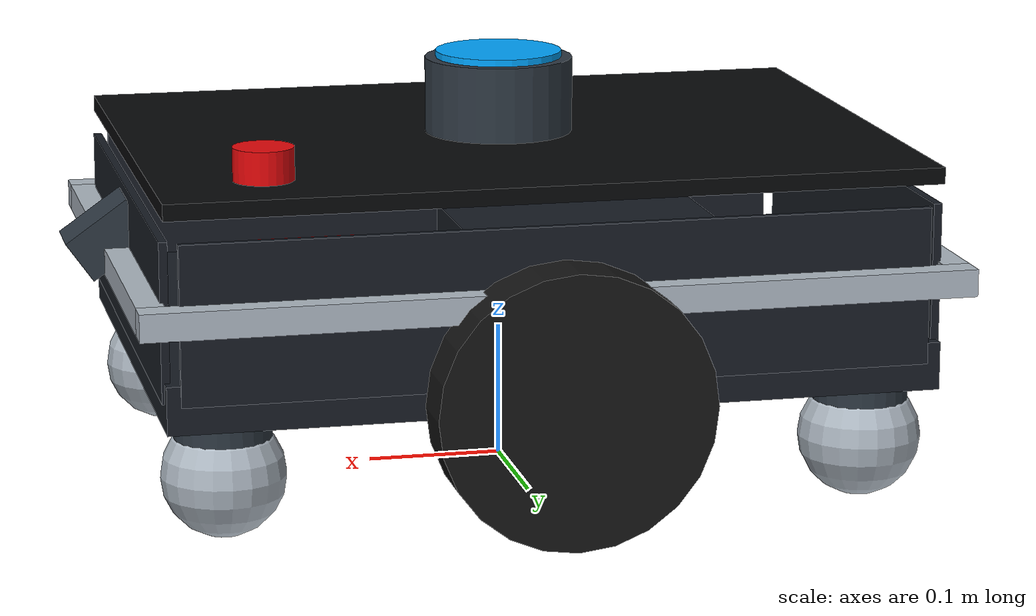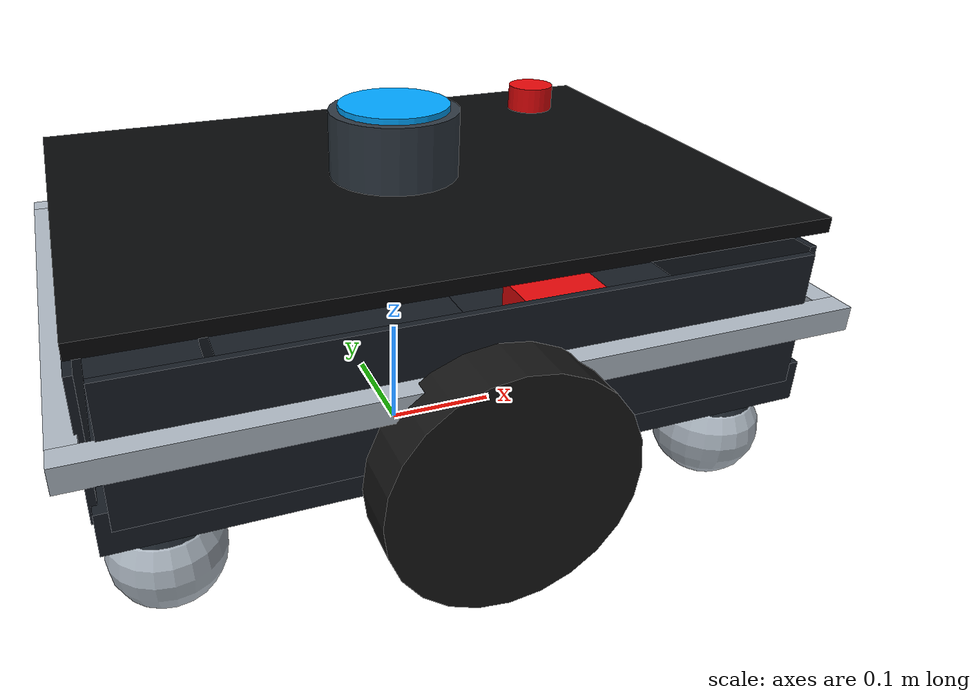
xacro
<?xml version="1.0"?>
<robot name="agv_01" xmlns:xacro="http://www.ros.org/wiki/xacro">

  <material name="aluminium"><color rgba="0.68 0.72 0.76 1"/></material>
  <material name="dark_panel"><color rgba="0.09 0.11 0.14 1"/></material>
  <material name="black"><color rgba="0.025 0.03 0.035 1"/></material>
  <material name="rubber"><color rgba="0.08 0.08 0.08 1"/></material>
  <material name="blue"><color rgba="0.0 0.65 1.0 1"/></material>
  <material name="red"><color rgba="0.9 0.03 0.04 1"/></material>
  <material name="sensor"><color rgba="0.18 0.22 0.26 1"/></material>

  <!-- ===== key numbers ===== -->
  <xacro:property name="wheel_r" value="0.10"/>
  <xacro:property name="wheel_w" value="0.045"/>
  <xacro:property name="wheel_y" value="0.235"/>     <!-- axle centre to wheel centre -> separation 0.47 -->
  <xacro:property name="plate_z" value="0.105"/>
  <xacro:property name="plate_t" value="0.035"/>     <!-- underside of the plate = 0.0875 m above floor -->
  <xacro:property name="cam_down_z" value="0.070"/>  <!-- down camera lens height above floor -->
  <xacro:property name="lidar_z" value="0.291"/>     <!-- scan plane: above the e-stop button (top 0.275) -->

  <!-- box part whose mass sits at its geometry; jxyz = joint origin, vz = geometry height in the link -->
  <xacro:macro name="box_part" params="name jxyz vz sx sy sz mass mat col:=true">
    <link name="${name}">
      <inertial>
        <origin xyz="0 0 ${vz}"/><mass value="${mass}"/>
        <inertia ixx="${mass*(sy*sy+sz*sz)/12}" ixy="0" ixz="0" iyy="${mass*(sx*sx+sz*sz)/12}" iyz="0" izz="${mass*(sx*sx+sy*sy)/12}"/>
      </inertial>
      <visual><origin xyz="0 0 ${vz}"/><geometry><box size="${sx} ${sy} ${sz}"/></geometry><material name="${mat}"/></visual>
      <xacro:if value="${col}">
        <collision><origin xyz="0 0 ${vz}"/><geometry><box size="${sx} ${sy} ${sz}"/></geometry></collision>
      </xacro:if>
    </link>
    <joint name="${name}_joint" type="fixed"><parent link="base_link"/><child link="${name}"/><origin xyz="${jxyz}"/></joint>
  </xacro:macro>

  <!-- ===== frames + chassis plate ===== -->
  <link name="base_footprint"/>
  <joint name="base_footprint_joint" type="fixed"><parent link="base_footprint"/><child link="base_link"/><origin xyz="0 0 0"/></joint>

  <link name="base_link">
    <inertial>
      <origin xyz="0 0 ${plate_z}"/><mass value="12.0"/>
      <inertia ixx="0.169" ixy="0" ixz="0" iyy="0.315" iyz="0" izz="0.482"/>   <!-- uniform 0.56 x 0.41 x 0.035 plate -->
    </inertial>
    <visual><origin xyz="0 0 ${plate_z}"/><geometry><box size="0.56 0.41 ${plate_t}"/></geometry><material name="dark_panel"/></visual>
    <collision><origin xyz="0 0 ${plate_z}"/><geometry><box size="0.56 0.41 ${plate_t}"/></geometry></collision>
  </link>

  <!-- 20x20 mm extrusion perimeter 600 x 450 -->
  <xacro:box_part name="rail_left"  jxyz="0 0.215 0"  vz="0.17" sx="0.60" sy="0.02" sz="0.02" mass="0.5"  mat="aluminium"/>
  <xacro:box_part name="rail_right" jxyz="0 -0.215 0" vz="0.17" sx="0.60" sy="0.02" sz="0.02" mass="0.5"  mat="aluminium"/>
  <xacro:box_part name="rail_front" jxyz="0.29 0 0"   vz="0.17" sx="0.02" sy="0.41" sz="0.02" mass="0.35" mat="aluminium"/>
  <xacro:box_part name="rail_rear"  jxyz="-0.29 0 0"  vz="0.17" sx="0.02" sy="0.41" sz="0.02" mass="0.35" mat="aluminium"/>
  <!-- enclosure panels (now with collision) -->
  <xacro:box_part name="left_panel"  jxyz="0 0.204 0"   vz="0.165" sx="0.54"  sy="0.006" sz="0.115" mass="1.0" mat="dark_panel"/>
  <xacro:box_part name="right_panel" jxyz="0 -0.204 0"  vz="0.165" sx="0.54"  sy="0.006" sz="0.115" mass="1.0" mat="dark_panel"/>
  <xacro:box_part name="front_panel" jxyz="0.279 0 0"   vz="0.165" sx="0.006" sy="0.39"  sz="0.115" mass="0.5" mat="dark_panel"/>
  <xacro:box_part name="rear_panel"  jxyz="-0.279 0 0"  vz="0.165" sx="0.006" sy="0.39"  sz="0.115" mass="0.5" mat="dark_panel"/>
  <xacro:box_part name="top_cover"   jxyz="0 0 0"       vz="0.245" sx="0.56"  sy="0.41"  sz="0.012" mass="2.0" mat="black"/>
  <!-- internal electronics (mass at their joint origin; no collision) -->
  <xacro:box_part name="raspberry_pi_link" jxyz="-0.08 0.08 0.14"  vz="0" sx="0.09" sy="0.06" sz="0.015" mass="0.08" mat="blue"  col="false"/>
  <xacro:box_part name="motor_driver_link" jxyz="0.10 0.08 0.14"   vz="0" sx="0.12" sy="0.08" sz="0.025" mass="0.25" mat="black" col="false"/>
  <xacro:box_part name="battery_link"      jxyz="-0.08 -0.07 0.14" vz="0" sx="0.20" sy="0.12" sz="0.055" mass="2.0"  mat="dark_panel" col="false"/>
  <xacro:box_part name="dc_dc_link"        jxyz="0.13 -0.07 0.14"  vz="0" sx="0.08" sy="0.06" sz="0.025" mass="0.18" mat="red"   col="false"/>

  <!-- emergency stop button on the top cover (z 0.251 .. 0.275) -->
  <link name="emergency_stop_link">
    <inertial><origin xyz="0 0 0.012"/><mass value="0.06"/><inertia ixx="0.00001" ixy="0" ixz="0" iyy="0.00001" iyz="0" izz="0.00001"/></inertial>
    <visual><origin xyz="0 0 0.012"/><geometry><cylinder radius="0.022" length="0.024"/></geometry><material name="red"/></visual>
  </link>
  <joint name="emergency_stop_joint" type="fixed"><parent link="base_link"/><child link="emergency_stop_link"/><origin xyz="0.20 0.14 0.251"/></joint>

  <!-- ===== drive wheels: spin axis = y, so iyy is the large inertia ===== -->
  <xacro:macro name="drive_wheel" params="side y">
    <link name="${side}_drive_wheel">
      <inertial><mass value="2.0"/>
        <inertia ixx="${2.0*(3*wheel_r*wheel_r+wheel_w*wheel_w)/12}" ixy="0" ixz="0" iyy="${0.5*2.0*wheel_r*wheel_r}" iyz="0" izz="${2.0*(3*wheel_r*wheel_r+wheel_w*wheel_w)/12}"/>
      </inertial>
      <visual><origin rpy="${pi/2} 0 0"/><geometry><cylinder radius="${wheel_r}" length="${wheel_w}"/></geometry><material name="rubber"/></visual>
      <collision><origin rpy="${pi/2} 0 0"/><geometry><cylinder radius="${wheel_r}" length="${wheel_w}"/></geometry></collision>
    </link>
    <joint name="${side}_drive_joint" type="continuous">
      <parent link="base_link"/><child link="${side}_drive_wheel"/>
      <origin xyz="0 ${y} ${wheel_r}"/><axis xyz="0 1 0"/>
      <limit effort="80" velocity="20"/><dynamics damping="0.05" friction="0.02"/>
    </joint>
  </xacro:macro>
  <xacro:drive_wheel side="left"  y="${wheel_y}"/>
  <xacro:drive_wheel side="right" y="${-wheel_y}"/>

  <!-- ===== four ball casters (low friction in the gazebo section) ===== -->
  <xacro:macro name="caster" params="name x y">
    <link name="${name}">
      <inertial><mass value="0.35"/><inertia ixx="0.0003" ixy="0" ixz="0" iyy="0.0003" iyz="0" izz="0.0003"/></inertial>
      <visual><geometry><sphere radius="0.045"/></geometry><material name="aluminium"/></visual>
      <visual><origin xyz="0 0 0.04"/><geometry><cylinder radius="0.035" length="0.03"/></geometry><material name="sensor"/></visual>
      <collision><geometry><sphere radius="0.045"/></geometry></collision>
    </link>
    <joint name="${name}_joint" type="fixed"><parent link="base_link"/><child link="${name}"/><origin xyz="${x} ${y} 0.045"/></joint>
  </xacro:macro>
  <xacro:caster name="caster_front_left"  x="0.235"  y="0.16"/>
  <xacro:caster name="caster_front_right" x="0.235"  y="-0.16"/>
  <xacro:caster name="caster_rear_left"   x="-0.235" y="0.16"/>
  <xacro:caster name="caster_rear_right"  x="-0.235" y="-0.16"/>

  <!-- ===== sensors. Camera link origin = lens, +x = viewing direction (Gazebo); optical frame z forward, x right, y down ===== -->
  <xacro:macro name="camera" params="name xyz rpy">
    <link name="${name}_link">
      <inertial><origin xyz="-0.02 0 0"/><mass value="0.08"/><inertia ixx="0.00003" ixy="0" ixz="0" iyy="0.00003" iyz="0" izz="0.00003"/></inertial>
      <visual><origin xyz="-0.0275 0 0"/><geometry><box size="0.055 0.045 0.035"/></geometry><material name="sensor"/></visual>
    </link>
    <joint name="${name}_joint" type="fixed"><parent link="base_link"/><child link="${name}_link"/><origin xyz="${xyz}" rpy="${rpy}"/></joint>
    <link name="${name}_optical_frame"/>
    <joint name="${name}_optical_joint" type="fixed"><parent link="${name}_link"/><child link="${name}_optical_frame"/><origin xyz="0 0 0" rpy="${-pi/2} 0 ${-pi/2}"/></joint>
  </xacro:macro>
  <!-- front: lens 1.8 cm ahead of the front rail, 35 deg down -->
  <xacro:camera name="camera_front" xyz="0.318 0 0.17" rpy="0 0.6108652382 0"/>
  <!-- down: under the plate centre (= axle centre, so it stays over a tag while turning in place), looking straight down -->
  <xacro:camera name="camera_down" xyz="0 0 ${cam_down_z}" rpy="0 ${pi/2} 0"/>

  <link name="lidar_1">
    <inertial><mass value="0.35"/><inertia ixx="0.001" ixy="0" ixz="0" iyy="0.001" iyz="0" izz="0.001"/></inertial>
    <visual><origin xyz="0 0 -0.012"/><geometry><cylinder radius="0.055" length="0.056"/></geometry><material name="sensor"/></visual>
    <visual><origin xyz="0 0 0.018"/><geometry><cylinder radius="0.047" length="0.006"/></geometry><material name="blue"/></visual>
  </link>
  <joint name="lidar_joint" type="fixed"><parent link="base_link"/><child link="lidar_1"/><origin xyz="0 0 ${lidar_z}"/></joint>

  <!-- ===== Gazebo ===== -->
  <gazebo>
    <plugin filename="libignition-gazebo-diff-drive-system.so" name="ignition::gazebo::systems::DiffDrive">
      <left_joint>left_drive_joint</left_joint>
      <right_joint>right_drive_joint</right_joint>
      <wheel_separation>${2*wheel_y}</wheel_separation>
      <wheel_radius>${wheel_r}</wheel_radius>
      <topic>/cmd_vel</topic>
      <odom_publish_frequency>20</odom_publish_frequency>
      <frame_id>odom</frame_id>
      <child_frame_id>base_footprint</child_frame_id>
    </plugin>
    <plugin filename="libignition-gazebo-joint-state-publisher-system.so" name="ignition::gazebo::systems::JointStatePublisher">
      <topic>/joint_states</topic>
    </plugin>
  </gazebo>

  <gazebo reference="caster_front_left"><mu1>0.001</mu1><mu2>0.001</mu2></gazebo>
  <gazebo reference="caster_front_right"><mu1>0.001</mu1><mu2>0.001</mu2></gazebo>
  <gazebo reference="caster_rear_left"><mu1>0.001</mu1><mu2>0.001</mu2></gazebo>
  <gazebo reference="caster_rear_right"><mu1>0.001</mu1><mu2>0.001</mu2></gazebo>
  <gazebo reference="left_drive_wheel"><mu1>1.0</mu1><mu2>1.0</mu2></gazebo>
  <gazebo reference="right_drive_wheel"><mu1>1.0</mu1><mu2>1.0</mu2></gazebo>

  <gazebo reference="lidar_1">
    <sensor name="lidar" type="gpu_lidar">
      <pose>0 0 0 0 0 0</pose>
      <topic>/scan</topic>
      <update_rate>10</update_rate>
      <ignition_frame_id>lidar_1</ignition_frame_id>
      <ray>
        <scan><horizontal><samples>720</samples><resolution>1</resolution><min_angle>-3.14159</min_angle><max_angle>3.14159</max_angle></horizontal></scan>
        <range><min>0.15</min><max>12.0</max><resolution>0.01</resolution></range>
      </ray>
      <always_on>1</always_on>
      <visualize>false</visualize>
    </sensor>
  </gazebo>

  <gazebo reference="camera_front_link">
    <sensor name="camera_front" type="camera">
      <topic>/camera/image_raw</topic>
      <update_rate>30</update_rate>
      <ignition_frame_id>camera_front_optical_frame</ignition_frame_id>
      <camera>
        <horizontal_fov>1.3962634</horizontal_fov>   <!-- 80 deg -->
        <image><width>800</width><height>800</height><format>R8G8B8</format></image>
        <clip><near>0.02</near><far>300</far></clip>
      </camera>
      <always_on>1</always_on>
      <visualize>false</visualize>
    </sensor>
  </gazebo>

  <!-- Down camera: lens 0.07 m above floor, 140 deg -> floor footprint 2*0.07*tan(70 deg) = 0.385 m,
       a 0.25 m tag (black + border) has 6.8 cm slack each side -->
  <gazebo reference="camera_down_link">
    <sensor name="camera_down" type="camera">
      <topic>/camera_down/image_raw</topic>
      <update_rate>30</update_rate>
      <ignition_frame_id>camera_down_optical_frame</ignition_frame_id>
      <camera>
        <horizontal_fov>2.443461</horizontal_fov>    <!-- 140 deg -->
        <image><width>640</width><height>640</height><format>R8G8B8</format></image>
        <clip><near>0.02</near><far>10</far></clip>
      </camera>
      <always_on>1</always_on>
      <visualize>false</visualize>
    </sensor>
  </gazebo>
</robot>
